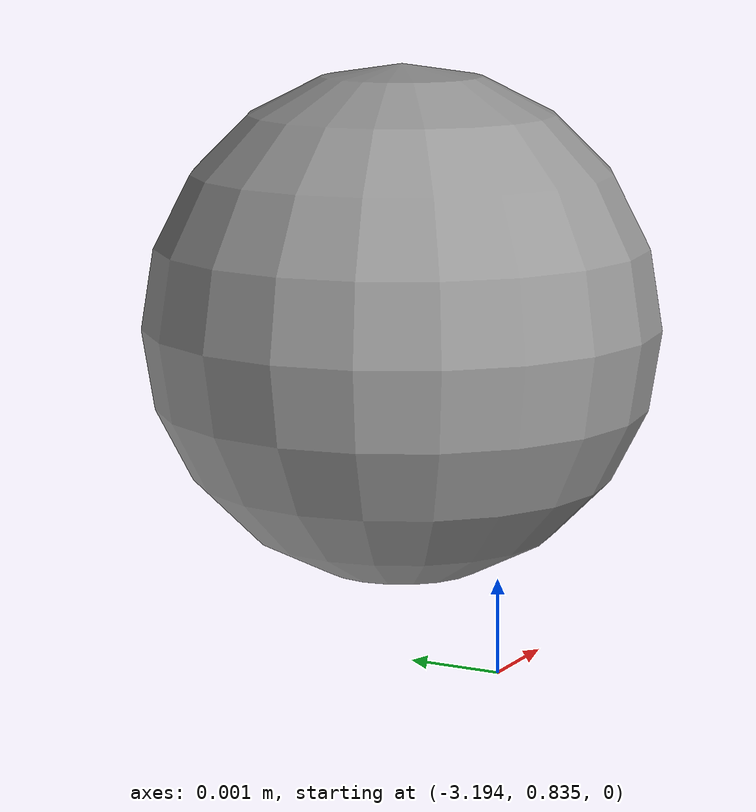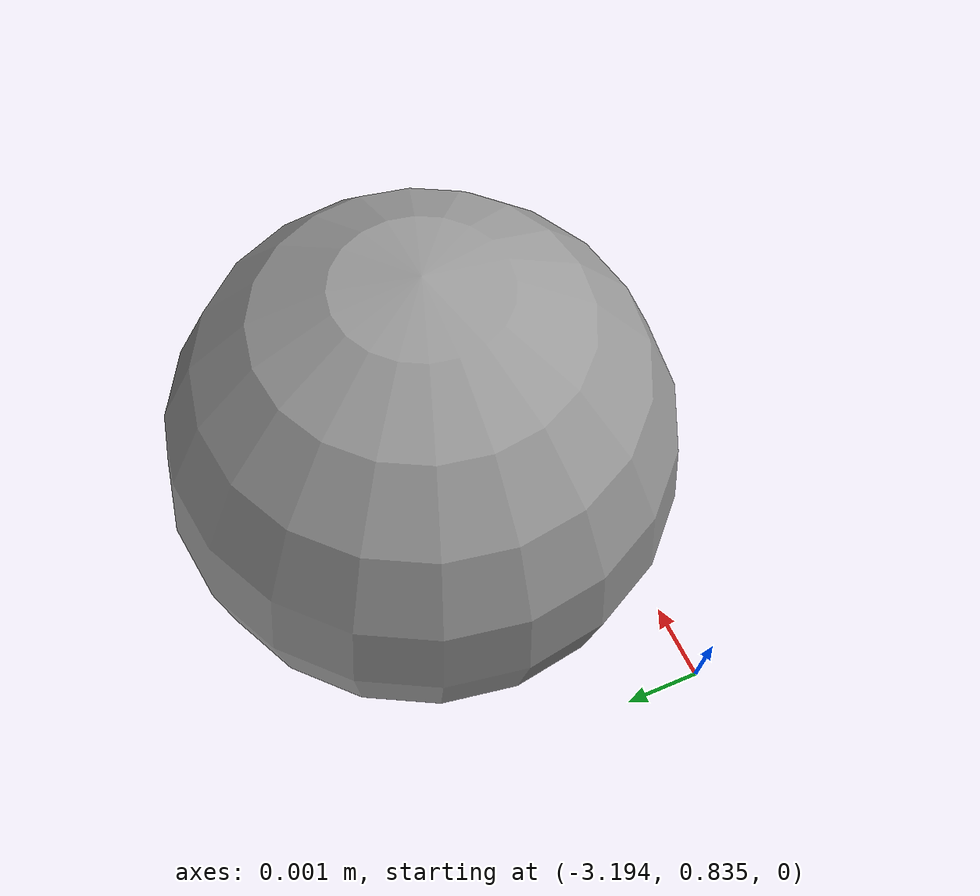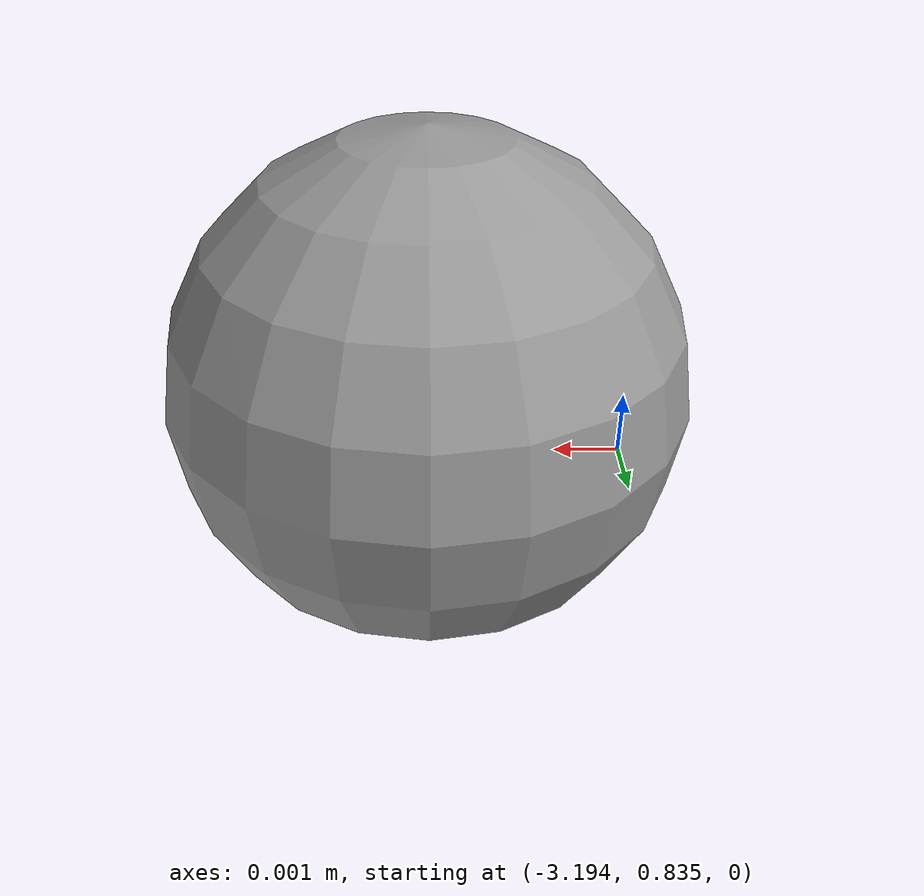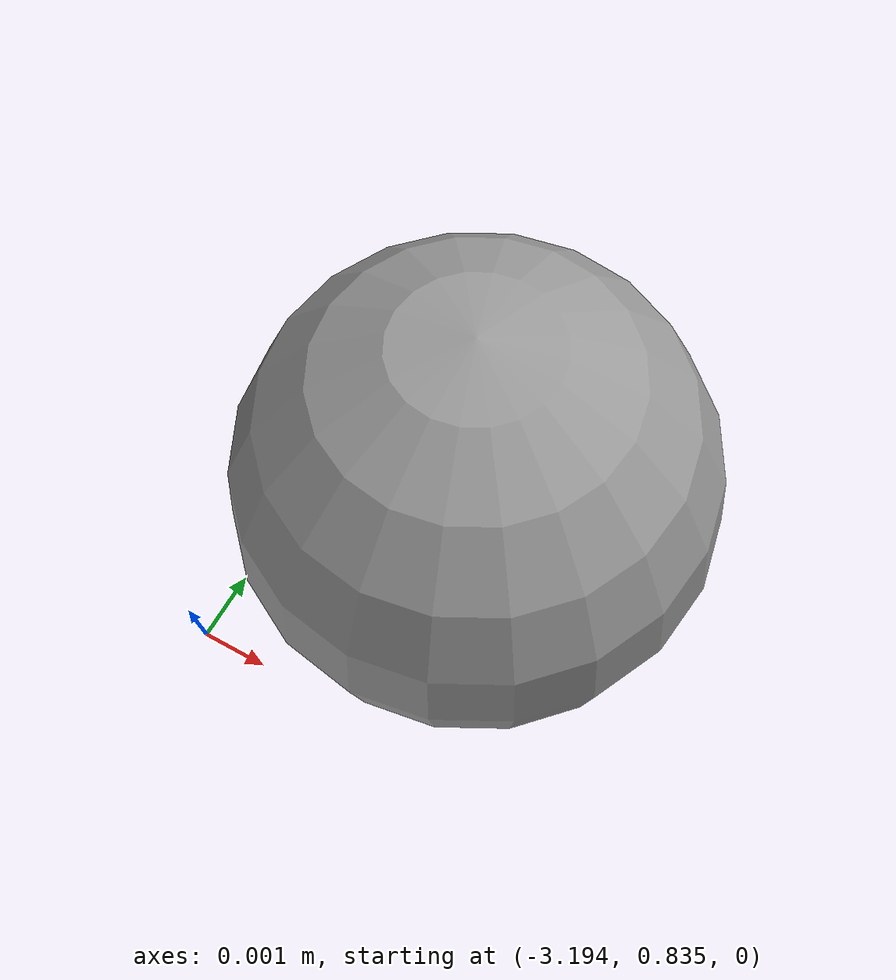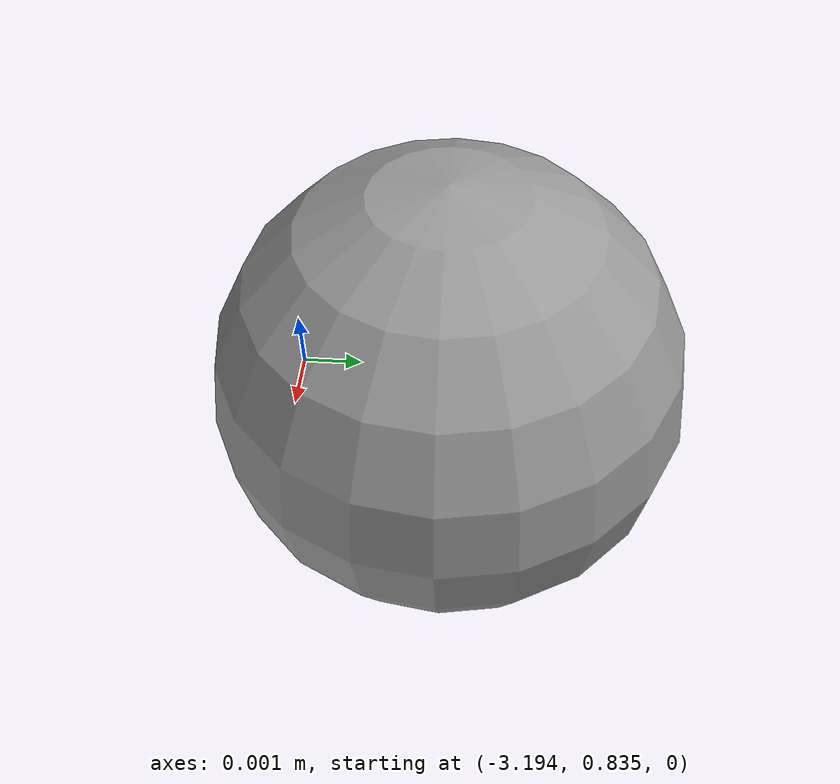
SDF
<?xml version='1.0'?>
<sdf version='1.7'>
  <model name='myWhiteTape'>
    <link name='link_1'>
      <inertial>
        <mass>0.00083454</mass>
        <inertia>
          <ixx>6.955e-05</ixx>
          <ixy>0</ixy>
          <ixz>0</ixz>
          <iyy>6.955e-05</iyy>
          <iyz>0</iyz>
          <izz>0.00013909</izz>
        </inertia>
        <pose>0 0 0 0 -0 0</pose>
      </inertial>
      <pose>-1.63246 -0.127798 -0 0 -0 0</pose>
      <gravity>1</gravity>
      <self_collide>0</self_collide>
      <kinematic>0</kinematic>
      <enable_wind>0</enable_wind>
      <visual name='visual'>
        <pose>0 0 0 0 -0 0</pose>
        <geometry>
          <box>
            <size>0.0762 1 0.000831</size>
          </box>
        </geometry>
        <material>
          <lighting>1</lighting>
          <script>
            <uri>file://media/materials/scripts/gazebo.material</uri>
            <name>Gazebo/Grey</name>
          </script>
          <shader type='normal_map_tangent_space'>
            <normal_map>__default__</normal_map>
          </shader>
          <ambient>0 0 0 1</ambient>
          <diffuse>0 0 0 1</diffuse>
          <specular>0.3 0.3 0.3 1</specular>
          <emissive>1 1 1 1</emissive>
        </material>
        <transparency>0</transparency>
        <cast_shadows>1</cast_shadows>
      </visual>
      <collision name='collision'>
        <laser_retro>0</laser_retro>
        <max_contacts>10</max_contacts>
        <pose>0 0 0 0 -0 0</pose>
        <geometry>
          <box>
            <size>0.0762 1 0.000831</size>
          </box>
        </geometry>
        <surface>
          <friction>
            <ode>
              <mu>1</mu>
              <mu2>1</mu2>
              <fdir1>0 0 0</fdir1>
              <slip1>0</slip1>
              <slip2>0</slip2>
            </ode>
            <torsional>
              <coefficient>1</coefficient>
              <patch_radius>0</patch_radius>
              <surface_radius>0</surface_radius>
              <use_patch_radius>1</use_patch_radius>
              <ode>
                <slip>0</slip>
              </ode>
            </torsional>
          </friction>
          <bounce>
            <restitution_coefficient>0</restitution_coefficient>
            <threshold>1e+06</threshold>
          </bounce>
          <contact>
            <collide_without_contact>0</collide_without_contact>
            <collide_without_contact_bitmask>1</collide_without_contact_bitmask>
            <collide_bitmask>1</collide_bitmask>
            <ode>
              <soft_cfm>0</soft_cfm>
              <soft_erp>0.2</soft_erp>
              <kp>1e+13</kp>
              <kd>1</kd>
              <max_vel>0.01</max_vel>
              <min_depth>0</min_depth>
            </ode>
            <bullet>
              <split_impulse>1</split_impulse>
              <split_impulse_penetration_threshold>-0.01</split_impulse_penetration_threshold>
              <soft_cfm>0</soft_cfm>
              <soft_erp>0.2</soft_erp>
              <kp>1e+13</kp>
              <kd>1</kd>
            </bullet>
          </contact>
        </surface>
      </collision>
    </link>
    <model name='ball_bearing'>
      <link name='link'>
        <pose>0 0 0.003 0 -0 0</pose>
        <inertial>
          <mass>0.0011</mass>
          <inertia>
            <ixx>3.96e-09</ixx>
            <ixy>0</ixy>
            <ixz>0</ixz>
            <iyy>3.96e-09</iyy>
            <iyz>0</iyz>
            <izz>3.96e-09</izz>
          </inertia>
          <pose>0 0 0 0 -0 0</pose>
        </inertial>
        <collision name='collision'>
          <geometry>
            <sphere>
              <radius>0.003</radius>
            </sphere>
          </geometry>
          <surface>
            <contact>
              <poissons_ratio>0.305</poissons_ratio>
              <elastic_modulus>2e+11</elastic_modulus>
              <ode>
                <kp>100000</kp>
                <kd>100</kd>
                <max_vel>100</max_vel>
                <min_depth>0.001</min_depth>
              </ode>
            </contact>
            <friction>
              <torsional>
                <coefficient>1</coefficient>
                <use_patch_radius>0</use_patch_radius>
                <surface_radius>0.01</surface_radius>
                <ode/>
              </torsional>
              <ode/>
            </friction>
            <bounce/>
          </surface>
          <max_contacts>10</max_contacts>
        </collision>
        <visual name='visual'>
          <geometry>
            <sphere>
              <radius>0.003</radius>
            </sphere>
          </geometry>
          <material>
            <script>
              <uri>file://media/materials/scripts/gazebo.material</uri>
              <name>Gazebo/Grey</name>
            </script>
          </material>
        </visual>
        <velocity_decay>
          <linear>0</linear>
          <angular>0.005</angular>
        </velocity_decay>
        <self_collide>0</self_collide>
        <enable_wind>0</enable_wind>
        <kinematic>0</kinematic>
      </link>
      <pose>-3.19098 0.837722 0 0 -0 0</pose>
    </model>
    <static>0</static>
    <allow_auto_disable>1</allow_auto_disable>
  </model>
</sdf>
